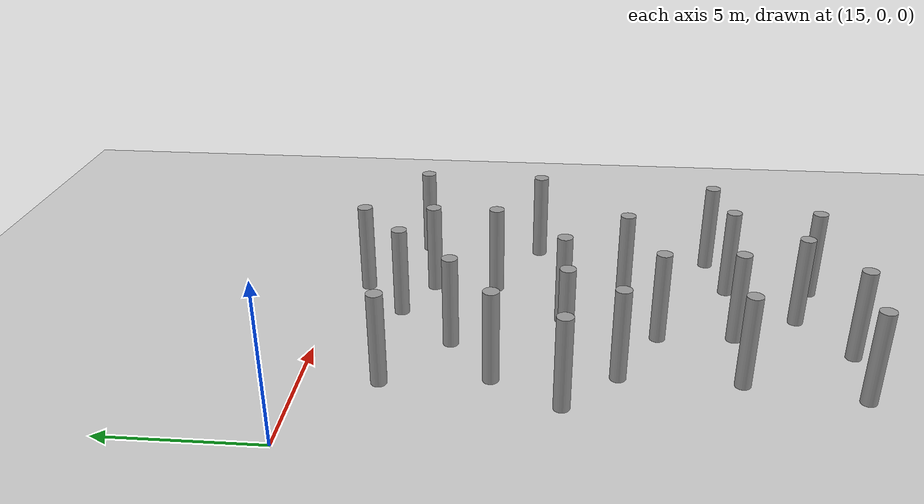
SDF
<sdf version="1.6">
 <world name="default">
  <model name="ground_plane">
   <static>1</static>
   <link name="link">
    <collision name="collision">
     <geometry><plane><normal>0 0 1</normal><size>100 100</size></plane></geometry>
     <surface><friction><ode><mu>100</mu><mu2>50</mu2></ode></friction></surface>
    </collision>
    <visual name="visual">
     <cast_shadows>0</cast_shadows>
     <geometry><plane><normal>0 0 1</normal><size>100 100</size></plane></geometry>
     <material>
      <script><uri>file://media/materials/scripts/gazebo.material</uri><name>Gazebo/Grey</name></script>
     </material>
    </visual>
   </link>
  </model>
  <model name="LjjForest_3">
   <link name="link_0_clone_1">
    <inertial>
     <mass>1</mass>
     <inertia><ixx>0.145833</ixx><ixy>0</ixy><ixz>0</ixz><iyy>0.145833</iyy><iyz>0</iyz><izz>0.125</izz></inertia>
    </inertial>
    <pose>-1.2394 -1.64814 0 0 -0 0</pose>
    <visual name="visual">
     <geometry><cylinder><radius>0.25</radius><length>3</length></cylinder></geometry>
     <material>
      <lighting>1</lighting>
      <script><uri>file://media/materials/scripts/gazebo.material</uri><name>Gazebo/Grey</name></script>
      <shader type="vertex"><normal_map>__default__</normal_map></shader>
      <ambient>0.3 0.3 0.3 1</ambient>
      <diffuse>0.7 0.7 0.7 1</diffuse>
      <specular>0.01 0.01 0.01 1</specular>
      <emissive>0 0 0 1</emissive>
     </material>
    </visual>
    <collision name="collision">
     <geometry><cylinder><radius>0.25</radius><length>3</length></cylinder></geometry>
     <surface>
      <friction>
       <ode><mu>1</mu><mu2>1</mu2><fdir1>0 0 0</fdir1><slip1>0</slip1><slip2>0</slip2></ode>
       <torsional>
        <coefficient>1</coefficient>
        <patch_radius>0</patch_radius>
        <surface_radius>0</surface_radius>
        <use_patch_radius>1</use_patch_radius>
        <ode><slip>0</slip></ode>
       </torsional>
      </friction>
      <bounce><restitution_coefficient>0</restitution_coefficient><threshold>1e+06</threshold></bounce>
      <contact>
       <collide_without_contact>0</collide_without_contact>
       <collide_without_contact_bitmask>1</collide_without_contact_bitmask>
       <collide_bitmask>1</collide_bitmask>
       <ode>
        <soft_cfm>0</soft_cfm>
        <soft_erp>0.2</soft_erp>
        <kp>1e+13</kp>
        <kd>1</kd>
        <max_vel>0.01</max_vel>
        <min_depth>0</min_depth>
       </ode>
       <bullet>
        <split_impulse>1</split_impulse>
        <split_impulse_penetration_threshold>-0.01</split_impulse_penetration_threshold>
        <soft_cfm>0</soft_cfm>
        <soft_erp>0.2</soft_erp>
        <kp>1e+13</kp>
        <kd>1</kd>
       </bullet>
      </contact>
     </surface>
    </collision>
   </link>
   <link name="link_0_clone_10">
    <inertial>
     <mass>1</mass>
     <inertia><ixx>0.145833</ixx><ixy>0</ixy><ixz>0</ixz><iyy>0.145833</iyy><iyz>0</iyz><izz>0.125</izz></inertia>
    </inertial>
    <pose>4.92442 -4.7051 0 0 -0 0</pose>
    <visual name="visual">
     <geometry><cylinder><radius>0.25</radius><length>3</length></cylinder></geometry>
     <material>
      <lighting>1</lighting>
      <script><uri>file://media/materials/scripts/gazebo.material</uri><name>Gazebo/Grey</name></script>
      <shader type="vertex"><normal_map>__default__</normal_map></shader>
      <ambient>0.3 0.3 0.3 1</ambient>
      <diffuse>0.7 0.7 0.7 1</diffuse>
      <specular>0.01 0.01 0.01 1</specular>
      <emissive>0 0 0 1</emissive>
     </material>
    </visual>
    <collision name="collision">
     <geometry><cylinder><radius>0.25</radius><length>3</length></cylinder></geometry>
     <surface>
      <friction>
       <ode><mu>1</mu><mu2>1</mu2><fdir1>0 0 0</fdir1><slip1>0</slip1><slip2>0</slip2></ode>
       <torsional>
        <coefficient>1</coefficient>
        <patch_radius>0</patch_radius>
        <surface_radius>0</surface_radius>
        <use_patch_radius>1</use_patch_radius>
        <ode><slip>0</slip></ode>
       </torsional>
      </friction>
      <bounce><restitution_coefficient>0</restitution_coefficient><threshold>1e+06</threshold></bounce>
      <contact>
       <collide_without_contact>0</collide_without_contact>
       <collide_without_contact_bitmask>1</collide_without_contact_bitmask>
       <collide_bitmask>1</collide_bitmask>
       <ode>
        <soft_cfm>0</soft_cfm>
        <soft_erp>0.2</soft_erp>
        <kp>1e+13</kp>
        <kd>1</kd>
        <max_vel>0.01</max_vel>
        <min_depth>0</min_depth>
       </ode>
       <bullet>
        <split_impulse>1</split_impulse>
        <split_impulse_penetration_threshold>-0.01</split_impulse_penetration_threshold>
        <soft_cfm>0</soft_cfm>
        <soft_erp>0.2</soft_erp>
        <kp>1e+13</kp>
        <kd>1</kd>
       </bullet>
      </contact>
     </surface>
    </collision>
   </link>
   <link name="link_0_clone_11">
    <inertial>
     <mass>1</mass>
     <inertia><ixx>0.145833</ixx><ixy>0</ixy><ixz>0</ixz><iyy>0.145833</iyy><iyz>0</iyz><izz>0.125</izz></inertia>
    </inertial>
    <pose>2.92414 -7.00263 0 0 -0 0</pose>
    <visual name="visual">
     <geometry><cylinder><radius>0.25</radius><length>3</length></cylinder></geometry>
     <material>
      <lighting>1</lighting>
      <script><uri>file://media/materials/scripts/gazebo.material</uri><name>Gazebo/Grey</name></script>
      <shader type="vertex"><normal_map>__default__</normal_map></shader>
      <ambient>0.3 0.3 0.3 1</ambient>
      <diffuse>0.7 0.7 0.7 1</diffuse>
      <specular>0.01 0.01 0.01 1</specular>
      <emissive>0 0 0 1</emissive>
     </material>
    </visual>
    <collision name="collision">
     <geometry><cylinder><radius>0.25</radius><length>3</length></cylinder></geometry>
     <surface>
      <friction>
       <ode><mu>1</mu><mu2>1</mu2><fdir1>0 0 0</fdir1><slip1>0</slip1><slip2>0</slip2></ode>
       <torsional>
        <coefficient>1</coefficient>
        <patch_radius>0</patch_radius>
        <surface_radius>0</surface_radius>
        <use_patch_radius>1</use_patch_radius>
        <ode><slip>0</slip></ode>
       </torsional>
      </friction>
      <bounce><restitution_coefficient>0</restitution_coefficient><threshold>1e+06</threshold></bounce>
      <contact>
       <collide_without_contact>0</collide_without_contact>
       <collide_without_contact_bitmask>1</collide_without_contact_bitmask>
       <collide_bitmask>1</collide_bitmask>
       <ode>
        <soft_cfm>0</soft_cfm>
        <soft_erp>0.2</soft_erp>
        <kp>1e+13</kp>
        <kd>1</kd>
        <max_vel>0.01</max_vel>
        <min_depth>0</min_depth>
       </ode>
       <bullet>
        <split_impulse>1</split_impulse>
        <split_impulse_penetration_threshold>-0.01</split_impulse_penetration_threshold>
        <soft_cfm>0</soft_cfm>
        <soft_erp>0.2</soft_erp>
        <kp>1e+13</kp>
        <kd>1</kd>
       </bullet>
      </contact>
     </surface>
    </collision>
   </link>
   <link name="link_0_clone_12">
    <inertial>
     <mass>1</mass>
     <inertia><ixx>0.145833</ixx><ixy>0</ixy><ixz>0</ixz><iyy>0.145833</iyy><iyz>0</iyz><izz>0.125</izz></inertia>
    </inertial>
    <pose>4.76112 -9.06376 0 0 -0 0</pose>
    <visual name="visual">
     <geometry><cylinder><radius>0.25</radius><length>3</length></cylinder></geometry>
     <material>
      <lighting>1</lighting>
      <script><uri>file://media/materials/scripts/gazebo.material</uri><name>Gazebo/Grey</name></script>
      <shader type="vertex"><normal_map>__default__</normal_map></shader>
      <ambient>0.3 0.3 0.3 1</ambient>
      <diffuse>0.7 0.7 0.7 1</diffuse>
      <specular>0.01 0.01 0.01 1</specular>
      <emissive>0 0 0 1</emissive>
     </material>
    </visual>
    <collision name="collision">
     <geometry><cylinder><radius>0.25</radius><length>3</length></cylinder></geometry>
     <surface>
      <friction>
       <ode><mu>1</mu><mu2>1</mu2><fdir1>0 0 0</fdir1><slip1>0</slip1><slip2>0</slip2></ode>
       <torsional>
        <coefficient>1</coefficient>
        <patch_radius>0</patch_radius>
        <surface_radius>0</surface_radius>
        <use_patch_radius>1</use_patch_radius>
        <ode><slip>0</slip></ode>
       </torsional>
      </friction>
      <bounce><restitution_coefficient>0</restitution_coefficient><threshold>1e+06</threshold></bounce>
      <contact>
       <collide_without_contact>0</collide_without_contact>
       <collide_without_contact_bitmask>1</collide_without_contact_bitmask>
       <collide_bitmask>1</collide_bitmask>
       <ode>
        <soft_cfm>0</soft_cfm>
        <soft_erp>0.2</soft_erp>
        <kp>1e+13</kp>
        <kd>1</kd>
        <max_vel>0.01</max_vel>
        <min_depth>0</min_depth>
       </ode>
       <bullet>
        <split_impulse>1</split_impulse>
        <split_impulse_penetration_threshold>-0.01</split_impulse_penetration_threshold>
        <soft_cfm>0</soft_cfm>
        <soft_erp>0.2</soft_erp>
        <kp>1e+13</kp>
        <kd>1</kd>
       </bullet>
      </contact>
     </surface>
    </collision>
   </link>
   <link name="link_0_clone_13">
    <inertial>
     <mass>1</mass>
     <inertia><ixx>0.145833</ixx><ixy>0</ixy><ixz>0</ixz><iyy>0.145833</iyy><iyz>0</iyz><izz>0.125</izz></inertia>
    </inertial>
    <pose>0.731055 -7.10049 0 0 -0 0</pose>
    <visual name="visual">
     <geometry><cylinder><radius>0.25</radius><length>3</length></cylinder></geometry>
     <material>
      <lighting>1</lighting>
      <script><uri>file://media/materials/scripts/gazebo.material</uri><name>Gazebo/Grey</name></script>
      <shader type="vertex"><normal_map>__default__</normal_map></shader>
      <ambient>0.3 0.3 0.3 1</ambient>
      <diffuse>0.7 0.7 0.7 1</diffuse>
      <specular>0.01 0.01 0.01 1</specular>
      <emissive>0 0 0 1</emissive>
     </material>
    </visual>
    <collision name="collision">
     <geometry><cylinder><radius>0.25</radius><length>3</length></cylinder></geometry>
     <surface>
      <friction>
       <ode><mu>1</mu><mu2>1</mu2><fdir1>0 0 0</fdir1><slip1>0</slip1><slip2>0</slip2></ode>
       <torsional>
        <coefficient>1</coefficient>
        <patch_radius>0</patch_radius>
        <surface_radius>0</surface_radius>
        <use_patch_radius>1</use_patch_radius>
        <ode><slip>0</slip></ode>
       </torsional>
      </friction>
      <bounce><restitution_coefficient>0</restitution_coefficient><threshold>1e+06</threshold></bounce>
      <contact>
       <collide_without_contact>0</collide_without_contact>
       <collide_without_contact_bitmask>1</collide_without_contact_bitmask>
       <collide_bitmask>1</collide_bitmask>
       <ode>
        <soft_cfm>0</soft_cfm>
        <soft_erp>0.2</soft_erp>
        <kp>1e+13</kp>
        <kd>1</kd>
        <max_vel>0.01</max_vel>
        <min_depth>0</min_depth>
       </ode>
       <bullet>
        <split_impulse>1</split_impulse>
        <split_impulse_penetration_threshold>-0.01</split_impulse_penetration_threshold>
        <soft_cfm>0</soft_cfm>
        <soft_erp>0.2</soft_erp>
        <kp>1e+13</kp>
        <kd>1</kd>
       </bullet>
      </contact>
     </surface>
    </collision>
   </link>
   <link name="link_0_clone_14">
    <inertial>
     <mass>1</mass>
     <inertia><ixx>0.145833</ixx><ixy>0</ixy><ixz>0</ixz><iyy>0.145833</iyy><iyz>0</iyz><izz>0.125</izz></inertia>
    </inertial>
    <pose>-0.840028 -4.93267 0 0 -0 0</pose>
    <visual name="visual">
     <geometry><cylinder><radius>0.25</radius><length>3</length></cylinder></geometry>
     <material>
      <lighting>1</lighting>
      <script><uri>file://media/materials/scripts/gazebo.material</uri><name>Gazebo/Grey</name></script>
      <shader type="vertex"><normal_map>__default__</normal_map></shader>
      <ambient>0.3 0.3 0.3 1</ambient>
      <diffuse>0.7 0.7 0.7 1</diffuse>
      <specular>0.01 0.01 0.01 1</specular>
      <emissive>0 0 0 1</emissive>
     </material>
    </visual>
    <collision name="collision">
     <geometry><cylinder><radius>0.25</radius><length>3</length></cylinder></geometry>
     <surface>
      <friction>
       <ode><mu>1</mu><mu2>1</mu2><fdir1>0 0 0</fdir1><slip1>0</slip1><slip2>0</slip2></ode>
       <torsional>
        <coefficient>1</coefficient>
        <patch_radius>0</patch_radius>
        <surface_radius>0</surface_radius>
        <use_patch_radius>1</use_patch_radius>
        <ode><slip>0</slip></ode>
       </torsional>
      </friction>
      <bounce><restitution_coefficient>0</restitution_coefficient><threshold>1e+06</threshold></bounce>
      <contact>
       <collide_without_contact>0</collide_without_contact>
       <collide_without_contact_bitmask>1</collide_without_contact_bitmask>
       <collide_bitmask>1</collide_bitmask>
       <ode>
        <soft_cfm>0</soft_cfm>
        <soft_erp>0.2</soft_erp>
        <kp>1e+13</kp>
        <kd>1</kd>
        <max_vel>0.01</max_vel>
        <min_depth>0</min_depth>
       </ode>
       <bullet>
        <split_impulse>1</split_impulse>
        <split_impulse_penetration_threshold>-0.01</split_impulse_penetration_threshold>
        <soft_cfm>0</soft_cfm>
        <soft_erp>0.2</soft_erp>
        <kp>1e+13</kp>
        <kd>1</kd>
       </bullet>
      </contact>
     </surface>
    </collision>
   </link>
   <link name="link_0_clone_18">
    <inertial>
     <mass>1</mass>
     <inertia><ixx>0.145833</ixx><ixy>0</ixy><ixz>0</ixz><iyy>0.145833</iyy><iyz>0</iyz><izz>0.125</izz></inertia>
    </inertial>
    <pose>-2.11118 -7.04502 0 0 -0 0</pose>
    <visual name="visual">
     <geometry><cylinder><radius>0.25</radius><length>3</length></cylinder></geometry>
     <material>
      <lighting>1</lighting>
      <script><uri>file://media/materials/scripts/gazebo.material</uri><name>Gazebo/Grey</name></script>
      <shader type="vertex"><normal_map>__default__</normal_map></shader>
      <ambient>0.3 0.3 0.3 1</ambient>
      <diffuse>0.7 0.7 0.7 1</diffuse>
      <specular>0.01 0.01 0.01 1</specular>
      <emissive>0 0 0 1</emissive>
     </material>
    </visual>
    <collision name="collision">
     <geometry><cylinder><radius>0.25</radius><length>3</length></cylinder></geometry>
     <surface>
      <friction>
       <ode><mu>1</mu><mu2>1</mu2><fdir1>0 0 0</fdir1><slip1>0</slip1><slip2>0</slip2></ode>
       <torsional>
        <coefficient>1</coefficient>
        <patch_radius>0</patch_radius>
        <surface_radius>0</surface_radius>
        <use_patch_radius>1</use_patch_radius>
        <ode><slip>0</slip></ode>
       </torsional>
      </friction>
      <bounce><restitution_coefficient>0</restitution_coefficient><threshold>1e+06</threshold></bounce>
      <contact>
       <collide_without_contact>0</collide_without_contact>
       <collide_without_contact_bitmask>1</collide_without_contact_bitmask>
       <collide_bitmask>1</collide_bitmask>
       <ode>
        <soft_cfm>0</soft_cfm>
        <soft_erp>0.2</soft_erp>
        <kp>1e+13</kp>
        <kd>1</kd>
        <max_vel>0.01</max_vel>
        <min_depth>0</min_depth>
       </ode>
       <bullet>
        <split_impulse>1</split_impulse>
        <split_impulse_penetration_threshold>-0.01</split_impulse_penetration_threshold>
        <soft_cfm>0</soft_cfm>
        <soft_erp>0.2</soft_erp>
        <kp>1e+13</kp>
        <kd>1</kd>
       </bullet>
      </contact>
     </surface>
    </collision>
   </link>
   <link name="link_0_clone_19">
    <inertial>
     <mass>1</mass>
     <inertia><ixx>0.145833</ixx><ixy>0</ixy><ixz>0</ixz><iyy>0.145833</iyy><iyz>0</iyz><izz>0.125</izz></inertia>
    </inertial>
    <pose>-0.4391 -8.69513 0 0 -0 0</pose>
    <visual name="visual">
     <geometry><cylinder><radius>0.25</radius><length>3</length></cylinder></geometry>
     <material>
      <lighting>1</lighting>
      <script><uri>file://media/materials/scripts/gazebo.material</uri><name>Gazebo/Grey</name></script>
      <shader type="vertex"><normal_map>__default__</normal_map></shader>
      <ambient>0.3 0.3 0.3 1</ambient>
      <diffuse>0.7 0.7 0.7 1</diffuse>
      <specular>0.01 0.01 0.01 1</specular>
      <emissive>0 0 0 1</emissive>
     </material>
    </visual>
    <collision name="collision">
     <geometry><cylinder><radius>0.25</radius><length>3</length></cylinder></geometry>
     <surface>
      <friction>
       <ode><mu>1</mu><mu2>1</mu2><fdir1>0 0 0</fdir1><slip1>0</slip1><slip2>0</slip2></ode>
       <torsional>
        <coefficient>1</coefficient>
        <patch_radius>0</patch_radius>
        <surface_radius>0</surface_radius>
        <use_patch_radius>1</use_patch_radius>
        <ode><slip>0</slip></ode>
       </torsional>
      </friction>
      <bounce><restitution_coefficient>0</restitution_coefficient><threshold>1e+06</threshold></bounce>
      <contact>
       <collide_without_contact>0</collide_without_contact>
       <collide_without_contact_bitmask>1</collide_without_contact_bitmask>
       <collide_bitmask>1</collide_bitmask>
       <ode>
        <soft_cfm>0</soft_cfm>
        <soft_erp>0.2</soft_erp>
        <kp>1e+13</kp>
        <kd>1</kd>
        <max_vel>0.01</max_vel>
        <min_depth>0</min_depth>
       </ode>
       <bullet>
        <split_impulse>1</split_impulse>
        <split_impulse_penetration_threshold>-0.01</split_impulse_penetration_threshold>
        <soft_cfm>0</soft_cfm>
        <soft_erp>0.2</soft_erp>
        <kp>1e+13</kp>
        <kd>1</kd>
       </bullet>
      </contact>
     </surface>
    </collision>
   </link>
   <link name="link_0_clone_20">
    <inertial>
     <mass>1</mass>
     <inertia><ixx>0.145833</ixx><ixy>0</ixy><ixz>0</ixz><iyy>0.145833</iyy><iyz>0</iyz><izz>0.125</izz></inertia>
    </inertial>
    <pose>1.97365 -10.0303 0 0 -0 0</pose>
    <visual name="visual">
     <geometry><cylinder><radius>0.25</radius><length>3</length></cylinder></geometry>
     <material>
      <lighting>1</lighting>
      <script><uri>file://media/materials/scripts/gazebo.material</uri><name>Gazebo/Grey</name></script>
      <shader type="vertex"><normal_map>__default__</normal_map></shader>
      <ambient>0.3 0.3 0.3 1</ambient>
      <diffuse>0.7 0.7 0.7 1</diffuse>
      <specular>0.01 0.01 0.01 1</specular>
      <emissive>0 0 0 1</emissive>
     </material>
    </visual>
    <collision name="collision">
     <geometry><cylinder><radius>0.25</radius><length>3</length></cylinder></geometry>
     <surface>
      <friction>
       <ode><mu>1</mu><mu2>1</mu2><fdir1>0 0 0</fdir1><slip1>0</slip1><slip2>0</slip2></ode>
       <torsional>
        <coefficient>1</coefficient>
        <patch_radius>0</patch_radius>
        <surface_radius>0</surface_radius>
        <use_patch_radius>1</use_patch_radius>
        <ode><slip>0</slip></ode>
       </torsional>
      </friction>
      <bounce><restitution_coefficient>0</restitution_coefficient><threshold>1e+06</threshold></bounce>
      <contact>
       <collide_without_contact>0</collide_without_contact>
       <collide_without_contact_bitmask>1</collide_without_contact_bitmask>
       <collide_bitmask>1</collide_bitmask>
       <ode>
        <soft_cfm>0</soft_cfm>
        <soft_erp>0.2</soft_erp>
        <kp>1e+13</kp>
        <kd>1</kd>
        <max_vel>0.01</max_vel>
        <min_depth>0</min_depth>
       </ode>
       <bullet>
        <split_impulse>1</split_impulse>
        <split_impulse_penetration_threshold>-0.01</split_impulse_penetration_threshold>
        <soft_cfm>0</soft_cfm>
        <soft_erp>0.2</soft_erp>
        <kp>1e+13</kp>
        <kd>1</kd>
       </bullet>
      </contact>
     </surface>
    </collision>
   </link>
   <link name="link_0_clone_32">
    <inertial>
     <mass>1</mass>
     <inertia><ixx>0.145833</ixx><ixy>0</ixy><ixz>0</ixz><iyy>0.145833</iyy><iyz>0</iyz><izz>0.125</izz></inertia>
    </inertial>
    <pose>3.04344 -1.68403 0 0 -0 0</pose>
    <visual name="visual">
     <geometry><cylinder><radius>0.25</radius><length>3</length></cylinder></geometry>
     <material>
      <lighting>1</lighting>
      <script><uri>file://media/materials/scripts/gazebo.material</uri><name>Gazebo/Grey</name></script>
      <shader type="vertex"><normal_map>__default__</normal_map></shader>
      <ambient>0.3 0.3 0.3 1</ambient>
      <diffuse>0.7 0.7 0.7 1</diffuse>
      <specular>0.01 0.01 0.01 1</specular>
      <emissive>0 0 0 1</emissive>
     </material>
    </visual>
    <collision name="collision">
     <geometry><cylinder><radius>0.25</radius><length>3</length></cylinder></geometry>
     <surface>
      <friction>
       <ode><mu>1</mu><mu2>1</mu2><fdir1>0 0 0</fdir1><slip1>0</slip1><slip2>0</slip2></ode>
       <torsional>
        <coefficient>1</coefficient>
        <patch_radius>0</patch_radius>
        <surface_radius>0</surface_radius>
        <use_patch_radius>1</use_patch_radius>
        <ode><slip>0</slip></ode>
       </torsional>
      </friction>
      <bounce><restitution_coefficient>0</restitution_coefficient><threshold>1e+06</threshold></bounce>
      <contact>
       <collide_without_contact>0</collide_without_contact>
       <collide_without_contact_bitmask>1</collide_without_contact_bitmask>
       <collide_bitmask>1</collide_bitmask>
       <ode>
        <soft_cfm>0</soft_cfm>
        <soft_erp>0.2</soft_erp>
        <kp>1e+13</kp>
        <kd>1</kd>
        <max_vel>0.01</max_vel>
        <min_depth>0</min_depth>
       </ode>
       <bullet>
        <split_impulse>1</split_impulse>
        <split_impulse_penetration_threshold>-0.01</split_impulse_penetration_threshold>
        <soft_cfm>0</soft_cfm>
        <soft_erp>0.2</soft_erp>
        <kp>1e+13</kp>
        <kd>1</kd>
       </bullet>
      </contact>
     </surface>
    </collision>
   </link>
   <link name="link_0_clone_7">
    <inertial>
     <mass>1</mass>
     <inertia><ixx>0.145833</ixx><ixy>0</ixy><ixz>0</ixz><iyy>0.145833</iyy><iyz>0</iyz><izz>0.125</izz></inertia>
    </inertial>
    <pose>1.14853 -3.52752 0 0 -0 0</pose>
    <visual name="visual">
     <geometry><cylinder><radius>0.25</radius><length>3</length></cylinder></geometry>
     <material>
      <lighting>1</lighting>
      <script><uri>file://media/materials/scripts/gazebo.material</uri><name>Gazebo/Grey</name></script>
      <shader type="vertex"><normal_map>__default__</normal_map></shader>
      <ambient>0.3 0.3 0.3 1</ambient>
      <diffuse>0.7 0.7 0.7 1</diffuse>
      <specular>0.01 0.01 0.01 1</specular>
      <emissive>0 0 0 1</emissive>
     </material>
    </visual>
    <collision name="collision">
     <geometry><cylinder><radius>0.25</radius><length>3</length></cylinder></geometry>
     <surface>
      <friction>
       <ode><mu>1</mu><mu2>1</mu2><fdir1>0 0 0</fdir1><slip1>0</slip1><slip2>0</slip2></ode>
       <torsional>
        <coefficient>1</coefficient>
        <patch_radius>0</patch_radius>
        <surface_radius>0</surface_radius>
        <use_patch_radius>1</use_patch_radius>
        <ode><slip>0</slip></ode>
       </torsional>
      </friction>
      <bounce><restitution_coefficient>0</restitution_coefficient><threshold>1e+06</threshold></bounce>
      <contact>
       <collide_without_contact>0</collide_without_contact>
       <collide_without_contact_bitmask>1</collide_without_contact_bitmask>
       <collide_bitmask>1</collide_bitmask>
       <ode>
        <soft_cfm>0</soft_cfm>
        <soft_erp>0.2</soft_erp>
        <kp>1e+13</kp>
        <kd>1</kd>
        <max_vel>0.01</max_vel>
        <min_depth>0</min_depth>
       </ode>
       <bullet>
        <split_impulse>1</split_impulse>
        <split_impulse_penetration_threshold>-0.01</split_impulse_penetration_threshold>
        <soft_cfm>0</soft_cfm>
        <soft_erp>0.2</soft_erp>
        <kp>1e+13</kp>
        <kd>1</kd>
       </bullet>
      </contact>
     </surface>
    </collision>
   </link>
   <link name="link_0_clone_8">
    <inertial>
     <mass>1</mass>
     <inertia><ixx>0.145833</ixx><ixy>0</ixy><ixz>0</ixz><iyy>0.145833</iyy><iyz>0</iyz><izz>0.125</izz></inertia>
    </inertial>
    <pose>4.72743 -0.273206 0 0 -0 0</pose>
    <visual name="visual">
     <geometry><cylinder><radius>0.25</radius><length>3</length></cylinder></geometry>
     <material>
      <lighting>1</lighting>
      <script><uri>file://media/materials/scripts/gazebo.material</uri><name>Gazebo/Grey</name></script>
      <shader type="vertex"><normal_map>__default__</normal_map></shader>
      <ambient>0.3 0.3 0.3 1</ambient>
      <diffuse>0.7 0.7 0.7 1</diffuse>
      <specular>0.01 0.01 0.01 1</specular>
      <emissive>0 0 0 1</emissive>
     </material>
    </visual>
    <collision name="collision">
     <geometry><cylinder><radius>0.25</radius><length>3</length></cylinder></geometry>
     <surface>
      <friction>
       <ode><mu>1</mu><mu2>1</mu2><fdir1>0 0 0</fdir1><slip1>0</slip1><slip2>0</slip2></ode>
       <torsional>
        <coefficient>1</coefficient>
        <patch_radius>0</patch_radius>
        <surface_radius>0</surface_radius>
        <use_patch_radius>1</use_patch_radius>
        <ode><slip>0</slip></ode>
       </torsional>
      </friction>
      <bounce><restitution_coefficient>0</restitution_coefficient><threshold>1e+06</threshold></bounce>
      <contact>
       <collide_without_contact>0</collide_without_contact>
       <collide_without_contact_bitmask>1</collide_without_contact_bitmask>
       <collide_bitmask>1</collide_bitmask>
       <ode>
        <soft_cfm>0</soft_cfm>
        <soft_erp>0.2</soft_erp>
        <kp>1e+13</kp>
        <kd>1</kd>
        <max_vel>0.01</max_vel>
        <min_depth>0</min_depth>
       </ode>
       <bullet>
        <split_impulse>1</split_impulse>
        <split_impulse_penetration_threshold>-0.01</split_impulse_penetration_threshold>
        <soft_cfm>0</soft_cfm>
        <soft_erp>0.2</soft_erp>
        <kp>1e+13</kp>
        <kd>1</kd>
       </bullet>
      </contact>
     </surface>
    </collision>
   </link>
   <link name="link_0_clone_9">
    <inertial>
     <mass>1</mass>
     <inertia><ixx>0.145833</ixx><ixy>0</ixy><ixz>0</ixz><iyy>0.145833</iyy><iyz>0</iyz><izz>0.125</izz></inertia>
    </inertial>
    <pose>4.89769 -2.58143 0 0 -0 0</pose>
    <visual name="visual">
     <geometry><cylinder><radius>0.25</radius><length>3</length></cylinder></geometry>
     <material>
      <lighting>1</lighting>
      <script><uri>file://media/materials/scripts/gazebo.material</uri><name>Gazebo/Grey</name></script>
      <shader type="vertex"><normal_map>__default__</normal_map></shader>
      <ambient>0.3 0.3 0.3 1</ambient>
      <diffuse>0.7 0.7 0.7 1</diffuse>
      <specular>0.01 0.01 0.01 1</specular>
      <emissive>0 0 0 1</emissive>
     </material>
    </visual>
    <collision name="collision">
     <geometry><cylinder><radius>0.25</radius><length>3</length></cylinder></geometry>
     <surface>
      <friction>
       <ode><mu>1</mu><mu2>1</mu2><fdir1>0 0 0</fdir1><slip1>0</slip1><slip2>0</slip2></ode>
       <torsional>
        <coefficient>1</coefficient>
        <patch_radius>0</patch_radius>
        <surface_radius>0</surface_radius>
        <use_patch_radius>1</use_patch_radius>
        <ode><slip>0</slip></ode>
       </torsional>
      </friction>
      <bounce><restitution_coefficient>0</restitution_coefficient><threshold>1e+06</threshold></bounce>
      <contact>
       <collide_without_contact>0</collide_without_contact>
       <collide_without_contact_bitmask>1</collide_without_contact_bitmask>
       <collide_bitmask>1</collide_bitmask>
       <ode>
        <soft_cfm>0</soft_cfm>
        <soft_erp>0.2</soft_erp>
        <kp>1e+13</kp>
        <kd>1</kd>
        <max_vel>0.01</max_vel>
        <min_depth>0</min_depth>
       </ode>
       <bullet>
        <split_impulse>1</split_impulse>
        <split_impulse_penetration_threshold>-0.01</split_impulse_penetration_threshold>
        <soft_cfm>0</soft_cfm>
        <soft_erp>0.2</soft_erp>
        <kp>1e+13</kp>
        <kd>1</kd>
       </bullet>
      </contact>
     </surface>
    </collision>
   </link>
   <static>0</static>
   <pose>19.5094 -0.740182 1.49999 0 -0 0.002244</pose>
  </model>
  <model name="LjjForest_4">
   <link name="link_0_clone_24">
    <inertial>
     <mass>1</mass>
     <inertia><ixx>0.145833</ixx><ixy>0</ixy><ixz>0</ixz><iyy>0.145833</iyy><iyz>0</iyz><izz>0.125</izz></inertia>
    </inertial>
    <pose>2.92874 7.75131 0 0 -0 0</pose>
    <visual name="visual">
     <geometry><cylinder><radius>0.25</radius><length>3</length></cylinder></geometry>
     <material>
      <lighting>1</lighting>
      <script><uri>file://media/materials/scripts/gazebo.material</uri><name>Gazebo/Grey</name></script>
      <shader type="vertex"><normal_map>__default__</normal_map></shader>
      <ambient>0.3 0.3 0.3 1</ambient>
      <diffuse>0.7 0.7 0.7 1</diffuse>
      <specular>0.01 0.01 0.01 1</specular>
      <emissive>0 0 0 1</emissive>
     </material>
    </visual>
    <collision name="collision">
     <geometry><cylinder><radius>0.25</radius><length>3</length></cylinder></geometry>
     <surface>
      <friction>
       <ode><mu>1</mu><mu2>1</mu2><fdir1>0 0 0</fdir1><slip1>0</slip1><slip2>0</slip2></ode>
       <torsional>
        <coefficient>1</coefficient>
        <patch_radius>0</patch_radius>
        <surface_radius>0</surface_radius>
        <use_patch_radius>1</use_patch_radius>
        <ode><slip>0</slip></ode>
       </torsional>
      </friction>
      <bounce><restitution_coefficient>0</restitution_coefficient><threshold>1e+06</threshold></bounce>
      <contact>
       <collide_without_contact>0</collide_without_contact>
       <collide_without_contact_bitmask>1</collide_without_contact_bitmask>
       <collide_bitmask>1</collide_bitmask>
       <ode>
        <soft_cfm>0</soft_cfm>
        <soft_erp>0.2</soft_erp>
        <kp>1e+13</kp>
        <kd>1</kd>
        <max_vel>0.01</max_vel>
        <min_depth>0</min_depth>
       </ode>
       <bullet>
        <split_impulse>1</split_impulse>
        <split_impulse_penetration_threshold>-0.01</split_impulse_penetration_threshold>
        <soft_cfm>0</soft_cfm>
        <soft_erp>0.2</soft_erp>
        <kp>1e+13</kp>
        <kd>1</kd>
       </bullet>
      </contact>
     </surface>
    </collision>
   </link>
   <link name="link_0_clone_25">
    <inertial>
     <mass>1</mass>
     <inertia><ixx>0.145833</ixx><ixy>0</ixy><ixz>0</ixz><iyy>0.145833</iyy><iyz>0</iyz><izz>0.125</izz></inertia>
    </inertial>
    <pose>4.82479 9.76951 0 0 -0 0</pose>
    <visual name="visual">
     <geometry><cylinder><radius>0.25</radius><length>3</length></cylinder></geometry>
     <material>
      <lighting>1</lighting>
      <script><uri>file://media/materials/scripts/gazebo.material</uri><name>Gazebo/Grey</name></script>
      <shader type="vertex"><normal_map>__default__</normal_map></shader>
      <ambient>0.3 0.3 0.3 1</ambient>
      <diffuse>0.7 0.7 0.7 1</diffuse>
      <specular>0.01 0.01 0.01 1</specular>
      <emissive>0 0 0 1</emissive>
     </material>
    </visual>
    <collision name="collision">
     <geometry><cylinder><radius>0.25</radius><length>3</length></cylinder></geometry>
     <surface>
      <friction>
       <ode><mu>1</mu><mu2>1</mu2><fdir1>0 0 0</fdir1><slip1>0</slip1><slip2>0</slip2></ode>
       <torsional>
        <coefficient>1</coefficient>
        <patch_radius>0</patch_radius>
        <surface_radius>0</surface_radius>
        <use_patch_radius>1</use_patch_radius>
        <ode><slip>0</slip></ode>
       </torsional>
      </friction>
      <bounce><restitution_coefficient>0</restitution_coefficient><threshold>1e+06</threshold></bounce>
      <contact>
       <collide_without_contact>0</collide_without_contact>
       <collide_without_contact_bitmask>1</collide_without_contact_bitmask>
       <collide_bitmask>1</collide_bitmask>
       <ode>
        <soft_cfm>0</soft_cfm>
        <soft_erp>0.2</soft_erp>
        <kp>1e+13</kp>
        <kd>1</kd>
        <max_vel>0.01</max_vel>
        <min_depth>0</min_depth>
       </ode>
       <bullet>
        <split_impulse>1</split_impulse>
        <split_impulse_penetration_threshold>-0.01</split_impulse_penetration_threshold>
        <soft_cfm>0</soft_cfm>
        <soft_erp>0.2</soft_erp>
        <kp>1e+13</kp>
        <kd>1</kd>
       </bullet>
      </contact>
     </surface>
    </collision>
   </link>
   <link name="link_0_clone_26">
    <inertial>
     <mass>1</mass>
     <inertia><ixx>0.145833</ixx><ixy>0</ixy><ixz>0</ixz><iyy>0.145833</iyy><iyz>0</iyz><izz>0.125</izz></inertia>
    </inertial>
    <pose>1.66794 9.91533 0 0 -0 0</pose>
    <visual name="visual">
     <geometry><cylinder><radius>0.25</radius><length>3</length></cylinder></geometry>
     <material>
      <lighting>1</lighting>
      <script><uri>file://media/materials/scripts/gazebo.material</uri><name>Gazebo/Grey</name></script>
      <shader type="vertex"><normal_map>__default__</normal_map></shader>
      <ambient>0.3 0.3 0.3 1</ambient>
      <diffuse>0.7 0.7 0.7 1</diffuse>
      <specular>0.01 0.01 0.01 1</specular>
      <emissive>0 0 0 1</emissive>
     </material>
    </visual>
    <collision name="collision">
     <geometry><cylinder><radius>0.25</radius><length>3</length></cylinder></geometry>
     <surface>
      <friction>
       <ode><mu>1</mu><mu2>1</mu2><fdir1>0 0 0</fdir1><slip1>0</slip1><slip2>0</slip2></ode>
       <torsional>
        <coefficient>1</coefficient>
        <patch_radius>0</patch_radius>
        <surface_radius>0</surface_radius>
        <use_patch_radius>1</use_patch_radius>
        <ode><slip>0</slip></ode>
       </torsional>
      </friction>
      <bounce><restitution_coefficient>0</restitution_coefficient><threshold>1e+06</threshold></bounce>
      <contact>
       <collide_without_contact>0</collide_without_contact>
       <collide_without_contact_bitmask>1</collide_without_contact_bitmask>
       <collide_bitmask>1</collide_bitmask>
       <ode>
        <soft_cfm>0</soft_cfm>
        <soft_erp>0.2</soft_erp>
        <kp>1e+13</kp>
        <kd>1</kd>
        <max_vel>0.01</max_vel>
        <min_depth>0</min_depth>
       </ode>
       <bullet>
        <split_impulse>1</split_impulse>
        <split_impulse_penetration_threshold>-0.01</split_impulse_penetration_threshold>
        <soft_cfm>0</soft_cfm>
        <soft_erp>0.2</soft_erp>
        <kp>1e+13</kp>
        <kd>1</kd>
       </bullet>
      </contact>
     </surface>
    </collision>
   </link>
   <link name="link_0_clone_27">
    <inertial>
     <mass>1</mass>
     <inertia><ixx>0.145833</ixx><ixy>0</ixy><ixz>0</ixz><iyy>0.145833</iyy><iyz>0</iyz><izz>0.125</izz></inertia>
    </inertial>
    <pose>-0.975859 10.0087 0 0 -0 0</pose>
    <visual name="visual">
     <geometry><cylinder><radius>0.25</radius><length>3</length></cylinder></geometry>
     <material>
      <lighting>1</lighting>
      <script><uri>file://media/materials/scripts/gazebo.material</uri><name>Gazebo/Grey</name></script>
      <shader type="vertex"><normal_map>__default__</normal_map></shader>
      <ambient>0.3 0.3 0.3 1</ambient>
      <diffuse>0.7 0.7 0.7 1</diffuse>
      <specular>0.01 0.01 0.01 1</specular>
      <emissive>0 0 0 1</emissive>
     </material>
    </visual>
    <collision name="collision">
     <geometry><cylinder><radius>0.25</radius><length>3</length></cylinder></geometry>
     <surface>
      <friction>
       <ode><mu>1</mu><mu2>1</mu2><fdir1>0 0 0</fdir1><slip1>0</slip1><slip2>0</slip2></ode>
       <torsional>
        <coefficient>1</coefficient>
        <patch_radius>0</patch_radius>
        <surface_radius>0</surface_radius>
        <use_patch_radius>1</use_patch_radius>
        <ode><slip>0</slip></ode>
       </torsional>
      </friction>
      <bounce><restitution_coefficient>0</restitution_coefficient><threshold>1e+06</threshold></bounce>
      <contact>
       <collide_without_contact>0</collide_without_contact>
       <collide_without_contact_bitmask>1</collide_without_contact_bitmask>
       <collide_bitmask>1</collide_bitmask>
       <ode>
        <soft_cfm>0</soft_cfm>
        <soft_erp>0.2</soft_erp>
        <kp>1e+13</kp>
        <kd>1</kd>
        <max_vel>0.01</max_vel>
        <min_depth>0</min_depth>
       </ode>
       <bullet>
        <split_impulse>1</split_impulse>
        <split_impulse_penetration_threshold>-0.01</split_impulse_penetration_threshold>
        <soft_cfm>0</soft_cfm>
        <soft_erp>0.2</soft_erp>
        <kp>1e+13</kp>
        <kd>1</kd>
       </bullet>
      </contact>
     </surface>
    </collision>
   </link>
   <link name="link_0_clone_30">
    <inertial>
     <mass>1</mass>
     <inertia><ixx>0.145833</ixx><ixy>0</ixy><ixz>0</ixz><iyy>0.145833</iyy><iyz>0</iyz><izz>0.125</izz></inertia>
    </inertial>
    <pose>4.96935 6.93626 0 0 -0 0</pose>
    <visual name="visual">
     <geometry><cylinder><radius>0.25</radius><length>3</length></cylinder></geometry>
     <material>
      <lighting>1</lighting>
      <script><uri>file://media/materials/scripts/gazebo.material</uri><name>Gazebo/Grey</name></script>
      <shader type="vertex"><normal_map>__default__</normal_map></shader>
      <ambient>0.3 0.3 0.3 1</ambient>
      <diffuse>0.7 0.7 0.7 1</diffuse>
      <specular>0.01 0.01 0.01 1</specular>
      <emissive>0 0 0 1</emissive>
     </material>
    </visual>
    <collision name="collision">
     <geometry><cylinder><radius>0.25</radius><length>3</length></cylinder></geometry>
     <surface>
      <friction>
       <ode><mu>1</mu><mu2>1</mu2><fdir1>0 0 0</fdir1><slip1>0</slip1><slip2>0</slip2></ode>
       <torsional>
        <coefficient>1</coefficient>
        <patch_radius>0</patch_radius>
        <surface_radius>0</surface_radius>
        <use_patch_radius>1</use_patch_radius>
        <ode><slip>0</slip></ode>
       </torsional>
      </friction>
      <bounce><restitution_coefficient>0</restitution_coefficient><threshold>1e+06</threshold></bounce>
      <contact>
       <collide_without_contact>0</collide_without_contact>
       <collide_without_contact_bitmask>1</collide_without_contact_bitmask>
       <collide_bitmask>1</collide_bitmask>
       <ode>
        <soft_cfm>0</soft_cfm>
        <soft_erp>0.2</soft_erp>
        <kp>1e+13</kp>
        <kd>1</kd>
        <max_vel>0.01</max_vel>
        <min_depth>0</min_depth>
       </ode>
       <bullet>
        <split_impulse>1</split_impulse>
        <split_impulse_penetration_threshold>-0.01</split_impulse_penetration_threshold>
        <soft_cfm>0</soft_cfm>
        <soft_erp>0.2</soft_erp>
        <kp>1e+13</kp>
        <kd>1</kd>
       </bullet>
      </contact>
     </surface>
    </collision>
   </link>
   <link name="link_0_clone_4">
    <inertial>
     <mass>1</mass>
     <inertia><ixx>0.145833</ixx><ixy>0</ixy><ixz>0</ixz><iyy>0.145833</iyy><iyz>0</iyz><izz>0.125</izz></inertia>
    </inertial>
    <pose>0.858928 6.3824 0 0 -0 0</pose>
    <visual name="visual">
     <geometry><cylinder><radius>0.25</radius><length>3</length></cylinder></geometry>
     <material>
      <lighting>1</lighting>
      <script><uri>file://media/materials/scripts/gazebo.material</uri><name>Gazebo/Grey</name></script>
      <shader type="vertex"><normal_map>__default__</normal_map></shader>
      <ambient>0.3 0.3 0.3 1</ambient>
      <diffuse>0.7 0.7 0.7 1</diffuse>
      <specular>0.01 0.01 0.01 1</specular>
      <emissive>0 0 0 1</emissive>
     </material>
    </visual>
    <collision name="collision">
     <geometry><cylinder><radius>0.25</radius><length>3</length></cylinder></geometry>
     <surface>
      <friction>
       <ode><mu>1</mu><mu2>1</mu2><fdir1>0 0 0</fdir1><slip1>0</slip1><slip2>0</slip2></ode>
       <torsional>
        <coefficient>1</coefficient>
        <patch_radius>0</patch_radius>
        <surface_radius>0</surface_radius>
        <use_patch_radius>1</use_patch_radius>
        <ode><slip>0</slip></ode>
       </torsional>
      </friction>
      <bounce><restitution_coefficient>0</restitution_coefficient><threshold>1e+06</threshold></bounce>
      <contact>
       <collide_without_contact>0</collide_without_contact>
       <collide_without_contact_bitmask>1</collide_without_contact_bitmask>
       <collide_bitmask>1</collide_bitmask>
       <ode>
        <soft_cfm>0</soft_cfm>
        <soft_erp>0.2</soft_erp>
        <kp>1e+13</kp>
        <kd>1</kd>
        <max_vel>0.01</max_vel>
        <min_depth>0</min_depth>
       </ode>
       <bullet>
        <split_impulse>1</split_impulse>
        <split_impulse_penetration_threshold>-0.01</split_impulse_penetration_threshold>
        <soft_cfm>0</soft_cfm>
        <soft_erp>0.2</soft_erp>
        <kp>1e+13</kp>
        <kd>1</kd>
       </bullet>
      </contact>
     </surface>
    </collision>
   </link>
   <link name="link_0_clone_5">
    <inertial>
     <mass>1</mass>
     <inertia><ixx>0.145833</ixx><ixy>0</ixy><ixz>0</ixz><iyy>0.145833</iyy><iyz>0</iyz><izz>0.125</izz></inertia>
    </inertial>
    <pose>-1.56065 6.53618 0 0 -0 0</pose>
    <visual name="visual">
     <geometry><cylinder><radius>0.25</radius><length>3</length></cylinder></geometry>
     <material>
      <lighting>1</lighting>
      <script><uri>file://media/materials/scripts/gazebo.material</uri><name>Gazebo/Grey</name></script>
      <shader type="vertex"><normal_map>__default__</normal_map></shader>
      <ambient>0.3 0.3 0.3 1</ambient>
      <diffuse>0.7 0.7 0.7 1</diffuse>
      <specular>0.01 0.01 0.01 1</specular>
      <emissive>0 0 0 1</emissive>
     </material>
    </visual>
    <collision name="collision">
     <geometry><cylinder><radius>0.25</radius><length>3</length></cylinder></geometry>
     <surface>
      <friction>
       <ode><mu>1</mu><mu2>1</mu2><fdir1>0 0 0</fdir1><slip1>0</slip1><slip2>0</slip2></ode>
       <torsional>
        <coefficient>1</coefficient>
        <patch_radius>0</patch_radius>
        <surface_radius>0</surface_radius>
        <use_patch_radius>1</use_patch_radius>
        <ode><slip>0</slip></ode>
       </torsional>
      </friction>
      <bounce><restitution_coefficient>0</restitution_coefficient><threshold>1e+06</threshold></bounce>
      <contact>
       <collide_without_contact>0</collide_without_contact>
       <collide_without_contact_bitmask>1</collide_without_contact_bitmask>
       <collide_bitmask>1</collide_bitmask>
       <ode>
        <soft_cfm>0</soft_cfm>
        <soft_erp>0.2</soft_erp>
        <kp>1e+13</kp>
        <kd>1</kd>
        <max_vel>0.01</max_vel>
        <min_depth>0</min_depth>
       </ode>
       <bullet>
        <split_impulse>1</split_impulse>
        <split_impulse_penetration_threshold>-0.01</split_impulse_penetration_threshold>
        <soft_cfm>0</soft_cfm>
        <soft_erp>0.2</soft_erp>
        <kp>1e+13</kp>
        <kd>1</kd>
       </bullet>
      </contact>
     </surface>
    </collision>
   </link>
   <static>0</static>
   <pose>20.0127 -23.0998 1.49999 0 -0 0.002232</pose>
  </model>
  <model name="LjjForest_6">
   <link name="link_0_clone_16">
    <inertial>
     <mass>1</mass>
     <inertia><ixx>0.145833</ixx><ixy>0</ixy><ixz>0</ixz><iyy>0.145833</iyy><iyz>0</iyz><izz>0.125</izz></inertia>
    </inertial>
    <pose>-5.04025 -3.1815 0 0 -0 0</pose>
    <visual name="visual">
     <geometry><cylinder><radius>0.25</radius><length>3</length></cylinder></geometry>
     <material>
      <lighting>1</lighting>
      <script><uri>file://media/materials/scripts/gazebo.material</uri><name>Gazebo/Grey</name></script>
      <shader type="vertex"><normal_map>__default__</normal_map></shader>
      <ambient>0.3 0.3 0.3 1</ambient>
      <diffuse>0.7 0.7 0.7 1</diffuse>
      <specular>0.01 0.01 0.01 1</specular>
      <emissive>0 0 0 1</emissive>
     </material>
    </visual>
    <collision name="collision">
     <geometry><cylinder><radius>0.25</radius><length>3</length></cylinder></geometry>
     <surface>
      <friction>
       <ode><mu>1</mu><mu2>1</mu2><fdir1>0 0 0</fdir1><slip1>0</slip1><slip2>0</slip2></ode>
       <torsional>
        <coefficient>1</coefficient>
        <patch_radius>0</patch_radius>
        <surface_radius>0</surface_radius>
        <use_patch_radius>1</use_patch_radius>
        <ode><slip>0</slip></ode>
       </torsional>
      </friction>
      <bounce><restitution_coefficient>0</restitution_coefficient><threshold>1e+06</threshold></bounce>
      <contact>
       <collide_without_contact>0</collide_without_contact>
       <collide_without_contact_bitmask>1</collide_without_contact_bitmask>
       <collide_bitmask>1</collide_bitmask>
       <ode>
        <soft_cfm>0</soft_cfm>
        <soft_erp>0.2</soft_erp>
        <kp>1e+13</kp>
        <kd>1</kd>
        <max_vel>0.01</max_vel>
        <min_depth>0</min_depth>
       </ode>
       <bullet>
        <split_impulse>1</split_impulse>
        <split_impulse_penetration_threshold>-0.01</split_impulse_penetration_threshold>
        <soft_cfm>0</soft_cfm>
        <soft_erp>0.2</soft_erp>
        <kp>1e+13</kp>
        <kd>1</kd>
       </bullet>
      </contact>
     </surface>
    </collision>
   </link>
   <link name="link_0_clone_22">
    <inertial>
     <mass>1</mass>
     <inertia><ixx>0.145833</ixx><ixy>0</ixy><ixz>0</ixz><iyy>0.145833</iyy><iyz>0</iyz><izz>0.125</izz></inertia>
    </inertial>
    <pose>-5.1094 -7.26741 0 0 -0 0</pose>
    <visual name="visual">
     <geometry><cylinder><radius>0.25</radius><length>3</length></cylinder></geometry>
     <material>
      <lighting>1</lighting>
      <script><uri>file://media/materials/scripts/gazebo.material</uri><name>Gazebo/Grey</name></script>
      <shader type="vertex"><normal_map>__default__</normal_map></shader>
      <ambient>0.3 0.3 0.3 1</ambient>
      <diffuse>0.7 0.7 0.7 1</diffuse>
      <specular>0.01 0.01 0.01 1</specular>
      <emissive>0 0 0 1</emissive>
     </material>
    </visual>
    <collision name="collision">
     <geometry><cylinder><radius>0.25</radius><length>3</length></cylinder></geometry>
     <surface>
      <friction>
       <ode><mu>1</mu><mu2>1</mu2><fdir1>0 0 0</fdir1><slip1>0</slip1><slip2>0</slip2></ode>
       <torsional>
        <coefficient>1</coefficient>
        <patch_radius>0</patch_radius>
        <surface_radius>0</surface_radius>
        <use_patch_radius>1</use_patch_radius>
        <ode><slip>0</slip></ode>
       </torsional>
      </friction>
      <bounce><restitution_coefficient>0</restitution_coefficient><threshold>1e+06</threshold></bounce>
      <contact>
       <collide_without_contact>0</collide_without_contact>
       <collide_without_contact_bitmask>1</collide_without_contact_bitmask>
       <collide_bitmask>1</collide_bitmask>
       <ode>
        <soft_cfm>0</soft_cfm>
        <soft_erp>0.2</soft_erp>
        <kp>1e+13</kp>
        <kd>1</kd>
        <max_vel>0.01</max_vel>
        <min_depth>0</min_depth>
       </ode>
       <bullet>
        <split_impulse>1</split_impulse>
        <split_impulse_penetration_threshold>-0.01</split_impulse_penetration_threshold>
        <soft_cfm>0</soft_cfm>
        <soft_erp>0.2</soft_erp>
        <kp>1e+13</kp>
        <kd>1</kd>
       </bullet>
      </contact>
     </surface>
    </collision>
   </link>
   <static>0</static>
   <pose>32.4934 0.445703 1.5 0 -0 0.002209</pose>
  </model>
  <model name="LjjForest_7">
   <link name="link_0_clone_29">
    <inertial>
     <mass>1</mass>
     <inertia><ixx>0.145833</ixx><ixy>0</ixy><ixz>0</ixz><iyy>0.145833</iyy><iyz>0</iyz><izz>0.125</izz></inertia>
    </inertial>
    <pose>-5.38645 9.63545 0 0 -0 0</pose>
    <visual name="visual">
     <geometry><cylinder><radius>0.25</radius><length>3</length></cylinder></geometry>
     <material>
      <lighting>1</lighting>
      <script><uri>file://media/materials/scripts/gazebo.material</uri><name>Gazebo/Grey</name></script>
      <shader type="vertex"><normal_map>__default__</normal_map></shader>
      <ambient>0.3 0.3 0.3 1</ambient>
      <diffuse>0.7 0.7 0.7 1</diffuse>
      <specular>0.01 0.01 0.01 1</specular>
      <emissive>0 0 0 1</emissive>
     </material>
    </visual>
    <collision name="collision">
     <geometry><cylinder><radius>0.25</radius><length>3</length></cylinder></geometry>
     <surface>
      <friction>
       <ode><mu>1</mu><mu2>1</mu2><fdir1>0 0 0</fdir1><slip1>0</slip1><slip2>0</slip2></ode>
       <torsional>
        <coefficient>1</coefficient>
        <patch_radius>0</patch_radius>
        <surface_radius>0</surface_radius>
        <use_patch_radius>1</use_patch_radius>
        <ode><slip>0</slip></ode>
       </torsional>
      </friction>
      <bounce><restitution_coefficient>0</restitution_coefficient><threshold>1e+06</threshold></bounce>
      <contact>
       <collide_without_contact>0</collide_without_contact>
       <collide_without_contact_bitmask>1</collide_without_contact_bitmask>
       <collide_bitmask>1</collide_bitmask>
       <ode>
        <soft_cfm>0</soft_cfm>
        <soft_erp>0.2</soft_erp>
        <kp>1e+13</kp>
        <kd>1</kd>
        <max_vel>0.01</max_vel>
        <min_depth>0</min_depth>
       </ode>
       <bullet>
        <split_impulse>1</split_impulse>
        <split_impulse_penetration_threshold>-0.01</split_impulse_penetration_threshold>
        <soft_cfm>0</soft_cfm>
        <soft_erp>0.2</soft_erp>
        <kp>1e+13</kp>
        <kd>1</kd>
       </bullet>
      </contact>
     </surface>
    </collision>
   </link>
   <static>0</static>
   <pose>32.2941 -22.489 1.5 0 -0 0.002156</pose>
  </model>
 </world>
</sdf>
